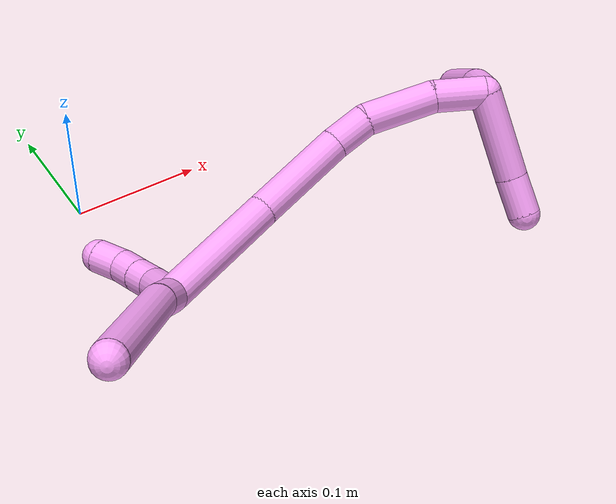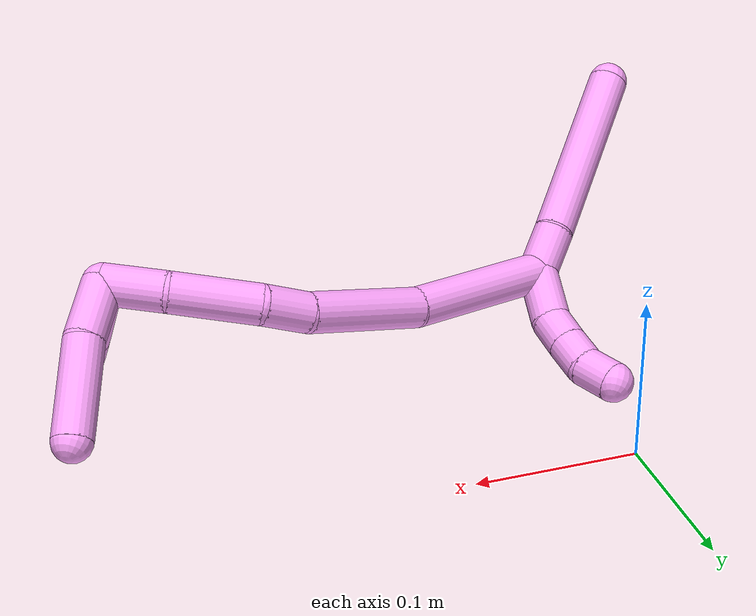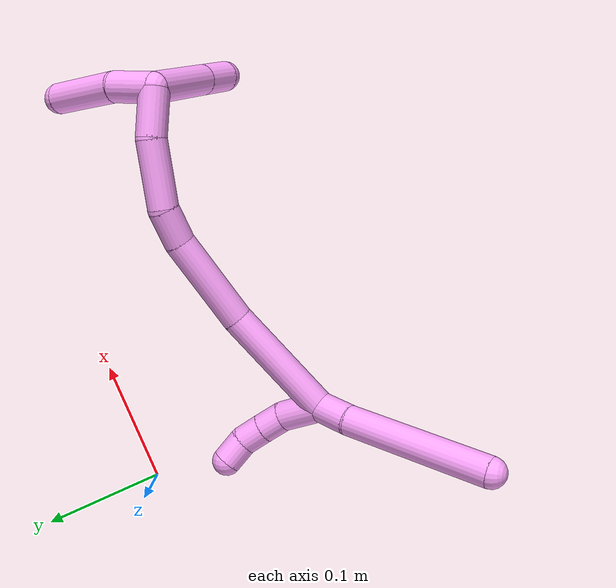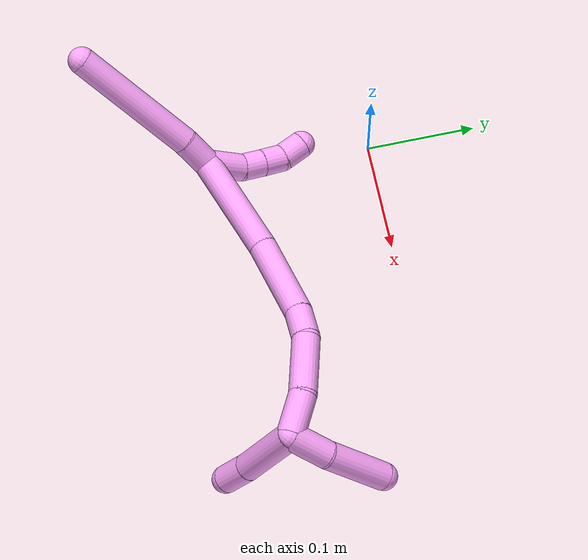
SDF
<sdf version="1.7">
 <world name="default">
  <model name="photoneo_s_sensor">
   <static>1</static>
   <pose>0 0 2 1.57079 1.57079 3.14159</pose>
   <link name="link">
    <inertial><mass>0.1</mass></inertial>
    <sensor name="sensor" type="depth">
     <update_rate>30</update_rate>
     <camera>
      <horizontal_fov>1.22</horizontal_fov>
      <image><width>1920</width><height>1200</height><format>B8G8R8</format></image>
      <clip><near>0.1</near><far>4</far></clip>
      <depth_camera><output>points</output></depth_camera>
     </camera>
     <plugin name="camera_plugin" filename="libgazebo_ros_depth_camera.so">
      <baseline>0.2</baseline>
      <alwaysOn>1</alwaysOn>
      <updateRate>0.0</updateRate>
      <cameraName>camera_ir</cameraName>
      <imageTopicName>/camera/color/image_raw</imageTopicName>
      <cameraInfoTopicName>/camera/color/camera_info</cameraInfoTopicName>
      <depthImageTopicName>/camera/depth/image_raw</depthImageTopicName>
      <depthImageCameraInfoTopicName>/camera/depth/camera_info</depthImageCameraInfoTopicName>
      <pointCloudTopicName>/camera/depth/points</pointCloudTopicName>
      <frameName>fr_optical</frameName>
      <pointCloudCutoff>0.1</pointCloudCutoff>
      <pointCloudCutoffMax>2.0</pointCloudCutoffMax>
      <distortionK1>0</distortionK1>
      <distortionK2>0</distortionK2>
      <distortionK3>0</distortionK3>
      <distortionT1>0</distortionT1>
      <distortionT2>0</distortionT2>
      <CxPrime>0</CxPrime>
      <Cx>0</Cx>
      <Cy>0</Cy>
      <focalLength>0</focalLength>
      <hackBaseline>0</hackBaseline>
     </plugin>
    </sensor>
   </link>
  </model>
  <model name="bin">
   <static>1</static>
   <link name="bottom">
    <collision name="collision-bottom">
     <pose>0 0 -0.01 0 -0 0</pose>
     <geometry><box><size>0.8 0.6 0.02</size></box></geometry>
     <surface>
      <friction><ode><mu>100</mu><mu2>100</mu2></ode></friction>
      <contact><collide_bitmask>65535</collide_bitmask></contact>
     </surface>
    </collision>
   </link>
   <link name="west_wall">
    <collision name="collision-west_wall">
     <pose>-0.41 0 0.1 0 -0 0</pose>
     <geometry><box><size>0.02 0.6 0.2</size></box></geometry>
     <surface>
      <friction><ode><mu>100</mu><mu2>100</mu2></ode></friction>
      <contact><collide_bitmask>65535</collide_bitmask></contact>
     </surface>
    </collision>
   </link>
   <link name="east_wall">
    <collision name="collision-east_wall">
     <pose>0.41 0 0.1 0 -0 0</pose>
     <geometry><box><size>0.02 0.6 0.2</size></box></geometry>
     <surface>
      <friction><ode><mu>100</mu><mu2>100</mu2></ode></friction>
      <contact><collide_bitmask>65535</collide_bitmask></contact>
     </surface>
    </collision>
   </link>
   <link name="south_wall">
    <collision name="collision-south_wall">
     <pose>0 -0.31 0.1 0 -0 0</pose>
     <geometry><box><size>0.8 0.02 0.2</size></box></geometry>
     <surface>
      <friction><ode><mu>100</mu><mu2>100</mu2></ode></friction>
      <contact><collide_bitmask>65535</collide_bitmask></contact>
     </surface>
    </collision>
   </link>
   <link name="north_wall">
    <collision name="collision-north_wall">
     <pose>0 0.31 0.1 0 -0 0</pose>
     <geometry><box><size>0.8 0.02 0.2</size></box></geometry>
     <surface>
      <friction><ode><mu>100</mu><mu2>100</mu2></ode></friction>
      <contact><collide_bitmask>65535</collide_bitmask></contact>
     </surface>
    </collision>
   </link>
  </model>
  <model name="4">
   <static>0</static>
   <link name="4">
    <collision name="collision-cylinder-e_1_2_8">
     <pose>-0.002423 0.003553 0.014364 -0.2425 -0.162325 0.019822</pose>
     <geometry><cylinder><radius>0.0125</radius><length>0.029988</length></cylinder></geometry>
     <surface>
      <friction><ode><mu>1.16</mu><mu2>1.16</mu2><slip1>0</slip1><slip2>0</slip2></ode></friction>
      <contact><ode><kp>1e+06</kp><kd>1</kd><max_vel>0</max_vel><min_depth>0.001</min_depth></ode></contact>
     </surface>
    </collision>
    <visual name="visual-cylinder-e_1_2_8">
     <pose>-0.002423 0.003553 0.014364 -0.2425 -0.162325 0.019822</pose>
     <geometry><cylinder><radius>0.0125</radius><length>0.029988</length></cylinder></geometry>
     <material><ambient>1 0.65098 0.996078 1</ambient></material>
    </visual>
    <collision name="collision-cylinder-e_2_8_6">
     <pose>-0.01349 0.013286 0.087786 -0.104264 -0.144547 0.007555</pose>
     <geometry><cylinder><radius>0.0125</radius><length>0.120012</length></cylinder></geometry>
     <surface>
      <friction><ode><mu>1.16</mu><mu2>1.16</mu2><slip1>0</slip1><slip2>0</slip2></ode></friction>
      <contact><ode><kp>1e+06</kp><kd>1</kd><max_vel>0</max_vel><min_depth>0.001</min_depth></ode></contact>
     </surface>
    </collision>
    <visual name="visual-cylinder-e_2_8_6">
     <pose>-0.01349 0.013286 0.087786 -0.104264 -0.144547 0.007555</pose>
     <geometry><cylinder><radius>0.0125</radius><length>0.120012</length></cylinder></geometry>
     <material><ambient>1 0.65098 0.996078 1</ambient></material>
    </visual>
    <collision name="collision-cylinder-e_1_2_9">
     <pose>-0.006793 3.3e-05 -0.016692 -3.13964 -0.386494 3.13159</pose>
     <geometry><cylinder><radius>0.0125</radius><length>0.036044</length></cylinder></geometry>
     <surface>
      <friction><ode><mu>1.16</mu><mu2>1.16</mu2><slip1>0</slip1><slip2>0</slip2></ode></friction>
      <contact><ode><kp>1e+06</kp><kd>1</kd><max_vel>0</max_vel><min_depth>0.001</min_depth></ode></contact>
     </surface>
    </collision>
    <visual name="visual-cylinder-e_1_2_9">
     <pose>-0.006793 3.3e-05 -0.016692 -3.13964 -0.386494 3.13159</pose>
     <geometry><cylinder><radius>0.0125</radius><length>0.036044</length></cylinder></geometry>
     <material><ambient>1 0.65098 0.996078 1</ambient></material>
    </visual>
    <collision name="collision-cylinder-e_2_9_10">
     <pose>-0.019481 0.002518 -0.041596 -2.85134 -0.602501 2.26222</pose>
     <geometry><cylinder><radius>0.0125</radius><length>0.020803</length></cylinder></geometry>
     <surface>
      <friction><ode><mu>1.16</mu><mu2>1.16</mu2><slip1>0</slip1><slip2>0</slip2></ode></friction>
      <contact><ode><kp>1e+06</kp><kd>1</kd><max_vel>0</max_vel><min_depth>0.001</min_depth></ode></contact>
     </surface>
    </collision>
    <visual name="visual-cylinder-e_2_9_10">
     <pose>-0.019481 0.002518 -0.041596 -2.85134 -0.602501 2.26222</pose>
     <geometry><cylinder><radius>0.0125</radius><length>0.020803</length></cylinder></geometry>
     <material><ambient>1 0.65098 0.996078 1</ambient></material>
    </visual>
    <collision name="collision-cylinder-e_3_10_11">
     <pose>-0.031385 0.007824 -0.057843 -2.80036 -0.613923 2.14584</pose>
     <geometry><cylinder><radius>0.0125</radius><length>0.020862</length></cylinder></geometry>
     <surface>
      <friction><ode><mu>1.16</mu><mu2>1.16</mu2><slip1>0</slip1><slip2>0</slip2></ode></friction>
      <contact><ode><kp>1e+06</kp><kd>1</kd><max_vel>0</max_vel><min_depth>0.001</min_depth></ode></contact>
     </surface>
    </collision>
    <visual name="visual-cylinder-e_3_10_11">
     <pose>-0.031385 0.007824 -0.057843 -2.80036 -0.613923 2.14584</pose>
     <geometry><cylinder><radius>0.0125</radius><length>0.020862</length></cylinder></geometry>
     <material><ambient>1 0.65098 0.996078 1</ambient></material>
    </visual>
    <collision name="collision-cylinder-e_4_11_5">
     <pose>-0.045833 0.01517 -0.071606 -2.47659 -0.859012 1.84956</pose>
     <geometry><cylinder><radius>0.0125</radius><length>0.022291</length></cylinder></geometry>
     <surface>
      <friction><ode><mu>1.16</mu><mu2>1.16</mu2><slip1>0</slip1><slip2>0</slip2></ode></friction>
      <contact><ode><kp>1e+06</kp><kd>1</kd><max_vel>0</max_vel><min_depth>0.001</min_depth></ode></contact>
     </surface>
    </collision>
    <visual name="visual-cylinder-e_4_11_5">
     <pose>-0.045833 0.01517 -0.071606 -2.47659 -0.859012 1.84956</pose>
     <geometry><cylinder><radius>0.0125</radius><length>0.022291</length></cylinder></geometry>
     <material><ambient>1 0.65098 0.996078 1</ambient></material>
    </visual>
    <collision name="collision-cylinder-e_1_2_12">
     <pose>0.036372 0.012291 -0.031037 -2.76452 0.828239 -2.3225</pose>
     <geometry><cylinder><radius>0.0125</radius><length>0.098739</length></cylinder></geometry>
     <surface>
      <friction><ode><mu>1.16</mu><mu2>1.16</mu2><slip1>0</slip1><slip2>0</slip2></ode></friction>
      <contact><ode><kp>1e+06</kp><kd>1</kd><max_vel>0</max_vel><min_depth>0.001</min_depth></ode></contact>
     </surface>
    </collision>
    <visual name="visual-cylinder-e_1_2_12">
     <pose>0.036372 0.012291 -0.031037 -2.76452 0.828239 -2.3225</pose>
     <geometry><cylinder><radius>0.0125</radius><length>0.098739</length></cylinder></geometry>
     <material><ambient>1 0.65098 0.996078 1</ambient></material>
    </visual>
    <collision name="collision-cylinder-e_2_12_13">
     <pose>0.104485 0.037173 -0.080403 -2.53971 0.95968 -2.06606</pose>
     <geometry><cylinder><radius>0.0125</radius><length>0.077509</length></cylinder></geometry>
     <surface>
      <friction><ode><mu>1.16</mu><mu2>1.16</mu2><slip1>0</slip1><slip2>0</slip2></ode></friction>
      <contact><ode><kp>1e+06</kp><kd>1</kd><max_vel>0</max_vel><min_depth>0.001</min_depth></ode></contact>
     </surface>
    </collision>
    <visual name="visual-cylinder-e_2_12_13">
     <pose>0.104485 0.037173 -0.080403 -2.53971 0.95968 -2.06606</pose>
     <geometry><cylinder><radius>0.0125</radius><length>0.077509</length></cylinder></geometry>
     <material><ambient>1 0.65098 0.996078 1</ambient></material>
    </visual>
    <collision name="collision-cylinder-e_3_13_14">
     <pose>0.149902 0.054641 -0.102662 -2.24908 1.1413 -1.86052</pose>
     <geometry><cylinder><radius>0.0125</radius><length>0.030086</length></cylinder></geometry>
     <surface>
      <friction><ode><mu>1.16</mu><mu2>1.16</mu2><slip1>0</slip1><slip2>0</slip2></ode></friction>
      <contact><ode><kp>1e+06</kp><kd>1</kd><max_vel>0</max_vel><min_depth>0.001</min_depth></ode></contact>
     </surface>
    </collision>
    <visual name="visual-cylinder-e_3_13_14">
     <pose>0.149902 0.054641 -0.102662 -2.24908 1.1413 -1.86052</pose>
     <geometry><cylinder><radius>0.0125</radius><length>0.030086</length></cylinder></geometry>
     <material><ambient>1 0.65098 0.996078 1</ambient></material>
    </visual>
    <collision name="collision-cylinder-e_4_14_15">
     <pose>0.190669 0.060398 -0.110462 -2.91796 1.42535 -2.88318</pose>
     <geometry><cylinder><radius>0.0125</radius><length>0.05476</length></cylinder></geometry>
     <surface>
      <friction><ode><mu>1.16</mu><mu2>1.16</mu2><slip1>0</slip1><slip2>0</slip2></ode></friction>
      <contact><ode><kp>1e+06</kp><kd>1</kd><max_vel>0</max_vel><min_depth>0.001</min_depth></ode></contact>
     </surface>
    </collision>
    <visual name="visual-cylinder-e_4_14_15">
     <pose>0.190669 0.060398 -0.110462 -2.91796 1.42535 -2.88318</pose>
     <geometry><cylinder><radius>0.0125</radius><length>0.05476</length></cylinder></geometry>
     <material><ambient>1 0.65098 0.996078 1</ambient></material>
    </visual>
    <collision name="collision-cylinder-e_5_15_1">
     <pose>0.236835 0.057471 -0.114644 1.65275 1.37312 1.45413</pose>
     <geometry><cylinder><radius>0.0125</radius><length>0.038907</length></cylinder></geometry>
     <surface>
      <friction><ode><mu>1.16</mu><mu2>1.16</mu2><slip1>0</slip1><slip2>0</slip2></ode></friction>
      <contact><ode><kp>1e+06</kp><kd>1</kd><max_vel>0</max_vel><min_depth>0.001</min_depth></ode></contact>
     </surface>
    </collision>
    <visual name="visual-cylinder-e_5_15_1">
     <pose>0.236835 0.057471 -0.114644 1.65275 1.37312 1.45413</pose>
     <geometry><cylinder><radius>0.0125</radius><length>0.038907</length></cylinder></geometry>
     <material><ambient>1 0.65098 0.996078 1</ambient></material>
    </visual>
    <collision name="collision-cylinder-e_1_1_16">
     <pose>0.25633 0.053358 -0.134102 3.12568 0.021984 1.88874</pose>
     <geometry><cylinder><radius>0.0125</radius><length>0.038304</length></cylinder></geometry>
     <surface>
      <friction><ode><mu>1.16</mu><mu2>1.16</mu2><slip1>0</slip1><slip2>0</slip2></ode></friction>
      <contact><ode><kp>1e+06</kp><kd>1</kd><max_vel>0</max_vel><min_depth>0.001</min_depth></ode></contact>
     </surface>
    </collision>
    <visual name="visual-cylinder-e_1_1_16">
     <pose>0.25633 0.053358 -0.134102 3.12568 0.021984 1.88874</pose>
     <geometry><cylinder><radius>0.0125</radius><length>0.038304</length></cylinder></geometry>
     <material><ambient>1 0.65098 0.996078 1</ambient></material>
    </visual>
    <collision name="collision-cylinder-e_2_16_4">
     <pose>0.2521 0.049509 -0.183536 3.0251 -0.151379 -1.83059</pose>
     <geometry><cylinder><radius>0.0125</radius><length>0.061696</length></cylinder></geometry>
     <surface>
      <friction><ode><mu>1.16</mu><mu2>1.16</mu2><slip1>0</slip1><slip2>0</slip2></ode></friction>
      <contact><ode><kp>1e+06</kp><kd>1</kd><max_vel>0</max_vel><min_depth>0.001</min_depth></ode></contact>
     </surface>
    </collision>
    <visual name="visual-cylinder-e_2_16_4">
     <pose>0.2521 0.049509 -0.183536 3.0251 -0.151379 -1.83059</pose>
     <geometry><cylinder><radius>0.0125</radius><length>0.061696</length></cylinder></geometry>
     <material><ambient>1 0.65098 0.996078 1</ambient></material>
    </visual>
    <collision name="collision-cylinder-e_1_1_17">
     <pose>0.258311 0.019294 -0.114502 1.55755 0.069741 0.068823</pose>
     <geometry><cylinder><radius>0.0125</radius><length>0.068912</length></cylinder></geometry>
     <surface>
      <friction><ode><mu>1.16</mu><mu2>1.16</mu2><slip1>0</slip1><slip2>0</slip2></ode></friction>
      <contact><ode><kp>1e+06</kp><kd>1</kd><max_vel>0</max_vel><min_depth>0.001</min_depth></ode></contact>
     </surface>
    </collision>
    <visual name="visual-cylinder-e_1_1_17">
     <pose>0.258311 0.019294 -0.114502 1.55755 0.069741 0.068823</pose>
     <geometry><cylinder><radius>0.0125</radius><length>0.068912</length></cylinder></geometry>
     <material><ambient>1 0.65098 0.996078 1</ambient></material>
    </visual>
    <collision name="collision-cylinder-e_2_17_3">
     <pose>0.261952 -0.03045 -0.112122 1.44627 0.079881 0.070513</pose>
     <geometry><cylinder><radius>0.0125</radius><length>0.031088</length></cylinder></geometry>
     <surface>
      <friction><ode><mu>1.16</mu><mu2>1.16</mu2><slip1>0</slip1><slip2>0</slip2></ode></friction>
      <contact><ode><kp>1e+06</kp><kd>1</kd><max_vel>0</max_vel><min_depth>0.001</min_depth></ode></contact>
     </surface>
    </collision>
    <visual name="visual-cylinder-e_2_17_3">
     <pose>0.261952 -0.03045 -0.112122 1.44627 0.079881 0.070513</pose>
     <geometry><cylinder><radius>0.0125</radius><length>0.031088</length></cylinder></geometry>
     <material><ambient>1 0.65098 0.996078 1</ambient></material>
    </visual>
    <collision name="collision-sphere-3">
     <pose>0.263192 -0.045824 -0.110197 0 -0 0</pose>
     <geometry><sphere><radius>0.0125</radius></sphere></geometry>
     <surface>
      <friction><ode><mu>1.16</mu><mu2>1.16</mu2><slip1>0</slip1><slip2>0</slip2></ode></friction>
      <contact><ode><kp>1e+06</kp><kd>1</kd><max_vel>0</max_vel><min_depth>0.001</min_depth></ode></contact>
     </surface>
    </collision>
    <visual name="visual-sphere-3">
     <pose>0.263192 -0.045824 -0.110197 0 -0 0</pose>
     <geometry><sphere><radius>0.0125</radius></sphere></geometry>
     <material><ambient>1 0.65098 0.996078 1</ambient></material>
    </visual>
    <collision name="collision-sphere-17">
     <pose>0.260712 -0.015076 -0.114046 0 -0 0</pose>
     <geometry><sphere><radius>0.0125</radius></sphere></geometry>
     <surface>
      <friction><ode><mu>1.16</mu><mu2>1.16</mu2><slip1>0</slip1><slip2>0</slip2></ode></friction>
      <contact><ode><kp>1e+06</kp><kd>1</kd><max_vel>0</max_vel><min_depth>0.001</min_depth></ode></contact>
     </surface>
    </collision>
    <visual name="visual-sphere-17">
     <pose>0.260712 -0.015076 -0.114046 0 -0 0</pose>
     <geometry><sphere><radius>0.0125</radius></sphere></geometry>
     <material><ambient>1 0.65098 0.996078 1</ambient></material>
    </visual>
    <collision name="collision-sphere-4">
     <pose>0.247448 0.045965 -0.213824 0 -0 0</pose>
     <geometry><sphere><radius>0.0125</radius></sphere></geometry>
     <surface>
      <friction><ode><mu>1.16</mu><mu2>1.16</mu2><slip1>0</slip1><slip2>0</slip2></ode></friction>
      <contact><ode><kp>1e+06</kp><kd>1</kd><max_vel>0</max_vel><min_depth>0.001</min_depth></ode></contact>
     </surface>
    </collision>
    <visual name="visual-sphere-4">
     <pose>0.247448 0.045965 -0.213824 0 -0 0</pose>
     <geometry><sphere><radius>0.0125</radius></sphere></geometry>
     <material><ambient>1 0.65098 0.996078 1</ambient></material>
    </visual>
    <collision name="collision-sphere-16">
     <pose>0.256751 0.053054 -0.153247 0 -0 0</pose>
     <geometry><sphere><radius>0.0125</radius></sphere></geometry>
     <surface>
      <friction><ode><mu>1.16</mu><mu2>1.16</mu2><slip1>0</slip1><slip2>0</slip2></ode></friction>
      <contact><ode><kp>1e+06</kp><kd>1</kd><max_vel>0</max_vel><min_depth>0.001</min_depth></ode></contact>
     </surface>
    </collision>
    <visual name="visual-sphere-16">
     <pose>0.256751 0.053054 -0.153247 0 -0 0</pose>
     <geometry><sphere><radius>0.0125</radius></sphere></geometry>
     <material><ambient>1 0.65098 0.996078 1</ambient></material>
    </visual>
    <collision name="collision-sphere-1">
     <pose>0.255909 0.053663 -0.114957 0 -0 0</pose>
     <geometry><sphere><radius>0.0125</radius></sphere></geometry>
     <surface>
      <friction><ode><mu>1.16</mu><mu2>1.16</mu2><slip1>0</slip1><slip2>0</slip2></ode></friction>
      <contact><ode><kp>1e+06</kp><kd>1</kd><max_vel>0</max_vel><min_depth>0.001</min_depth></ode></contact>
     </surface>
    </collision>
    <visual name="visual-sphere-1">
     <pose>0.255909 0.053663 -0.114957 0 -0 0</pose>
     <geometry><sphere><radius>0.0125</radius></sphere></geometry>
     <material><ambient>1 0.65098 0.996078 1</ambient></material>
    </visual>
    <collision name="collision-sphere-15">
     <pose>0.21776 0.061278 -0.114331 0 -0 0</pose>
     <geometry><sphere><radius>0.0125</radius></sphere></geometry>
     <surface>
      <friction><ode><mu>1.16</mu><mu2>1.16</mu2><slip1>0</slip1><slip2>0</slip2></ode></friction>
      <contact><ode><kp>1e+06</kp><kd>1</kd><max_vel>0</max_vel><min_depth>0.001</min_depth></ode></contact>
     </surface>
    </collision>
    <visual name="visual-sphere-15">
     <pose>0.21776 0.061278 -0.114331 0 -0 0</pose>
     <geometry><sphere><radius>0.0125</radius></sphere></geometry>
     <material><ambient>1 0.65098 0.996078 1</ambient></material>
    </visual>
    <collision name="collision-sphere-14">
     <pose>0.163578 0.059518 -0.106593 0 -0 0</pose>
     <geometry><sphere><radius>0.0125</radius></sphere></geometry>
     <surface>
      <friction><ode><mu>1.16</mu><mu2>1.16</mu2><slip1>0</slip1><slip2>0</slip2></ode></friction>
      <contact><ode><kp>1e+06</kp><kd>1</kd><max_vel>0</max_vel><min_depth>0.001</min_depth></ode></contact>
     </surface>
    </collision>
    <visual name="visual-sphere-14">
     <pose>0.163578 0.059518 -0.106593 0 -0 0</pose>
     <geometry><sphere><radius>0.0125</radius></sphere></geometry>
     <material><ambient>1 0.65098 0.996078 1</ambient></material>
    </visual>
    <collision name="collision-sphere-13">
     <pose>0.136225 0.049763 -0.098732 0 -0 0</pose>
     <geometry><sphere><radius>0.0125</radius></sphere></geometry>
     <surface>
      <friction><ode><mu>1.16</mu><mu2>1.16</mu2><slip1>0</slip1><slip2>0</slip2></ode></friction>
      <contact><ode><kp>1e+06</kp><kd>1</kd><max_vel>0</max_vel><min_depth>0.001</min_depth></ode></contact>
     </surface>
    </collision>
    <visual name="visual-sphere-13">
     <pose>0.136225 0.049763 -0.098732 0 -0 0</pose>
     <geometry><sphere><radius>0.0125</radius></sphere></geometry>
     <material><ambient>1 0.65098 0.996078 1</ambient></material>
    </visual>
    <collision name="collision-sphere-12">
     <pose>0.072745 0.024583 -0.062074 0 -0 0</pose>
     <geometry><sphere><radius>0.0125</radius></sphere></geometry>
     <surface>
      <friction><ode><mu>1.16</mu><mu2>1.16</mu2><slip1>0</slip1><slip2>0</slip2></ode></friction>
      <contact><ode><kp>1e+06</kp><kd>1</kd><max_vel>0</max_vel><min_depth>0.001</min_depth></ode></contact>
     </surface>
    </collision>
    <visual name="visual-sphere-12">
     <pose>0.072745 0.024583 -0.062074 0 -0 0</pose>
     <geometry><sphere><radius>0.0125</radius></sphere></geometry>
     <material><ambient>1 0.65098 0.996078 1</ambient></material>
    </visual>
    <collision name="collision-sphere-5">
     <pose>-0.054273 0.019662 -0.077335 0 -0 0</pose>
     <geometry><sphere><radius>0.0125</radius></sphere></geometry>
     <surface>
      <friction><ode><mu>1.16</mu><mu2>1.16</mu2><slip1>0</slip1><slip2>0</slip2></ode></friction>
      <contact><ode><kp>1e+06</kp><kd>1</kd><max_vel>0</max_vel><min_depth>0.001</min_depth></ode></contact>
     </surface>
    </collision>
    <visual name="visual-sphere-5">
     <pose>-0.054273 0.019662 -0.077335 0 -0 0</pose>
     <geometry><sphere><radius>0.0125</radius></sphere></geometry>
     <material><ambient>1 0.65098 0.996078 1</ambient></material>
    </visual>
    <collision name="collision-sphere-8">
     <pose>-0.004847 0.007106 0.028728 0 -0 0</pose>
     <geometry><sphere><radius>0.0125</radius></sphere></geometry>
     <surface>
      <friction><ode><mu>1.16</mu><mu2>1.16</mu2><slip1>0</slip1><slip2>0</slip2></ode></friction>
      <contact><ode><kp>1e+06</kp><kd>1</kd><max_vel>0</max_vel><min_depth>0.001</min_depth></ode></contact>
     </surface>
    </collision>
    <visual name="visual-sphere-8">
     <pose>-0.004847 0.007106 0.028728 0 -0 0</pose>
     <geometry><sphere><radius>0.0125</radius></sphere></geometry>
     <material><ambient>1 0.65098 0.996078 1</ambient></material>
    </visual>
    <collision name="collision-sphere-2">
     <geometry><sphere><radius>0.0125</radius></sphere></geometry>
     <surface>
      <friction><ode><mu>1.16</mu><mu2>1.16</mu2><slip1>0</slip1><slip2>0</slip2></ode></friction>
      <contact><ode><kp>1e+06</kp><kd>1</kd><max_vel>0</max_vel><min_depth>0.001</min_depth></ode></contact>
     </surface>
    </collision>
    <visual name="visual-sphere-2">
     <geometry><sphere><radius>0.0125</radius></sphere></geometry>
     <material><ambient>1 0.65098 0.996078 1</ambient></material>
    </visual>
    <collision name="collision-sphere-9">
     <pose>-0.013586 6.5e-05 -0.033385 0 -0 0</pose>
     <geometry><sphere><radius>0.0125</radius></sphere></geometry>
     <surface>
      <friction><ode><mu>1.16</mu><mu2>1.16</mu2><slip1>0</slip1><slip2>0</slip2></ode></friction>
      <contact><ode><kp>1e+06</kp><kd>1</kd><max_vel>0</max_vel><min_depth>0.001</min_depth></ode></contact>
     </surface>
    </collision>
    <visual name="visual-sphere-9">
     <pose>-0.013586 6.5e-05 -0.033385 0 -0 0</pose>
     <geometry><sphere><radius>0.0125</radius></sphere></geometry>
     <material><ambient>1 0.65098 0.996078 1</ambient></material>
    </visual>
    <collision name="collision-sphere-6">
     <pose>-0.022133 0.019466 0.146843 0 -0 0</pose>
     <geometry><sphere><radius>0.0125</radius></sphere></geometry>
     <surface>
      <friction><ode><mu>1.16</mu><mu2>1.16</mu2><slip1>0</slip1><slip2>0</slip2></ode></friction>
      <contact><ode><kp>1e+06</kp><kd>1</kd><max_vel>0</max_vel><min_depth>0.001</min_depth></ode></contact>
     </surface>
    </collision>
    <visual name="visual-sphere-6">
     <pose>-0.022133 0.019466 0.146843 0 -0 0</pose>
     <geometry><sphere><radius>0.0125</radius></sphere></geometry>
     <material><ambient>1 0.65098 0.996078 1</ambient></material>
    </visual>
    <collision name="collision-sphere-10">
     <pose>-0.025376 0.004971 -0.049808 0 -0 0</pose>
     <geometry><sphere><radius>0.0125</radius></sphere></geometry>
     <surface>
      <friction><ode><mu>1.16</mu><mu2>1.16</mu2><slip1>0</slip1><slip2>0</slip2></ode></friction>
      <contact><ode><kp>1e+06</kp><kd>1</kd><max_vel>0</max_vel><min_depth>0.001</min_depth></ode></contact>
     </surface>
    </collision>
    <visual name="visual-sphere-10">
     <pose>-0.025376 0.004971 -0.049808 0 -0 0</pose>
     <geometry><sphere><radius>0.0125</radius></sphere></geometry>
     <material><ambient>1 0.65098 0.996078 1</ambient></material>
    </visual>
    <collision name="collision-sphere-11">
     <pose>-0.037394 0.010678 -0.065877 0 -0 0</pose>
     <geometry><sphere><radius>0.0125</radius></sphere></geometry>
     <surface>
      <friction><ode><mu>1.16</mu><mu2>1.16</mu2><slip1>0</slip1><slip2>0</slip2></ode></friction>
      <contact><ode><kp>1e+06</kp><kd>1</kd><max_vel>0</max_vel><min_depth>0.001</min_depth></ode></contact>
     </surface>
    </collision>
    <visual name="visual-sphere-11">
     <pose>-0.037394 0.010678 -0.065877 0 -0 0</pose>
     <geometry><sphere><radius>0.0125</radius></sphere></geometry>
     <material><ambient>1 0.65098 0.996078 1</ambient></material>
    </visual>
    <inertial>
     <pose>0.110871 0.025359 -0.058713 0 -0 0</pose>
     <mass>0.75</mass>
     <inertia>
      <ixx>5.9e-05</ixx>
      <ixy>0</ixy>
      <ixz>0</ixz>
      <iyy>0.000224</iyy>
      <iyz>0</iyz>
      <izz>-0.000121</izz>
     </inertia>
    </inertial>
   </link>
   <pose>0.001788 -0.150624 0.0432 1.06814 -0.226673 -0.406848</pose>
  </model>
 </world>
</sdf>
